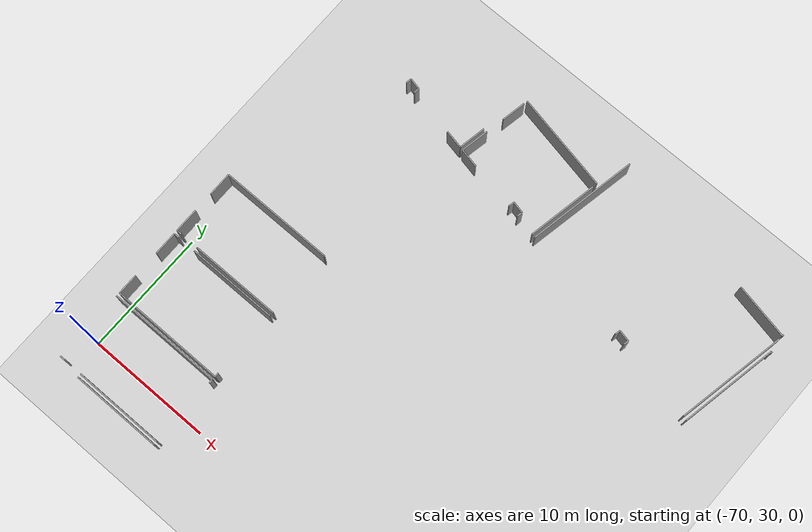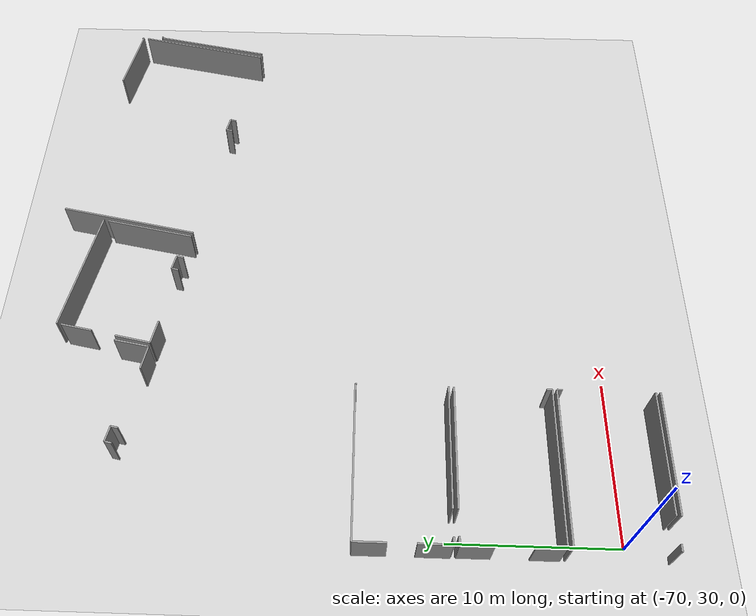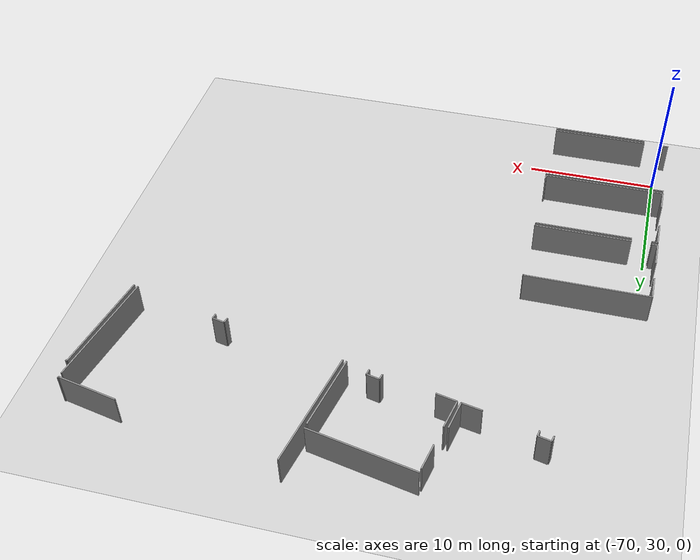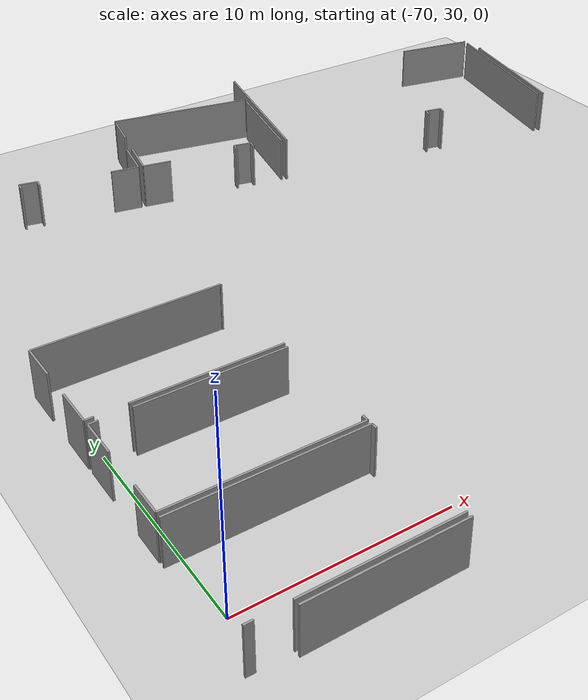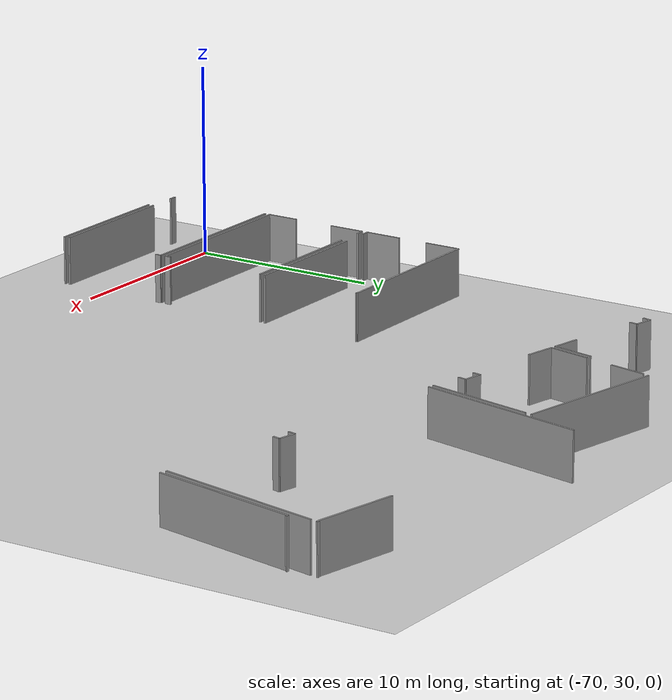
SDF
<sdf version="1.6">
 <world name="default">
  <model name="ground_plane">
   <static>1</static>
   <link name="link">
    <collision name="collision">
     <geometry><plane><normal>0 0 1</normal><size>100 100</size></plane></geometry>
     <surface><friction><ode><mu>100</mu><mu2>50</mu2></ode></friction></surface>
    </collision>
    <visual name="visual">
     <cast_shadows>0</cast_shadows>
     <geometry><plane><normal>0 0 1</normal><size>100 100</size></plane></geometry>
     <material>
      <script><uri>file://media/materials/scripts/gazebo.material</uri><name>Gazebo/Grey</name></script>
     </material>
    </visual>
   </link>
  </model>
  <model name="0510045926_A-40">
   <static>1</static>
   <link name="Wall_555">
    <collision name="Wall_555_Collision">
     <geometry><box><size>8.03696960588 0.1 2.5</size></box></geometry>
     <pose>4.01848480294 0 1.25 0 0 0</pose>
    </collision>
    <visual name="Wall_555_Visual">
     <pose>4.01848480294 0 1.25 0 0 0</pose>
     <geometry><box><size>8.03696960588 0.1 2.5</size></box></geometry>
     <material>
      <script><uri>file://media/materials/scripts/gazebo.material</uri><name>Gazebo/Grey</name></script>
      <ambient>1 1 1 1</ambient>
     </material>
    </visual>
    <pose>83.8994307762 -39.0161882944 0 0 0 2.9483656719</pose>
   </link>
   <link name="Wall_556">
    <collision name="Wall_556_Collision">
     <geometry><box><size>2.25757881405 0.1 2.5</size></box></geometry>
     <pose>1.12878940702 0 1.25 0 0 0</pose>
    </collision>
    <visual name="Wall_556_Visual">
     <pose>1.12878940702 0 1.25 0 0 0</pose>
     <geometry><box><size>2.25757881405 0.1 2.5</size></box></geometry>
     <material>
      <script><uri>file://media/materials/scripts/gazebo.material</uri><name>Gazebo/Grey</name></script>
      <ambient>1 1 1 1</ambient>
     </material>
    </visual>
    <pose>74.8507389757 -43.4075249234 0 0 0 1.37617915009</pose>
   </link>
   <link name="Wall_557">
    <collision name="Wall_557_Collision">
     <geometry><box><size>1.97564684365 0.1 2.5</size></box></geometry>
     <pose>0.987823421824 0 1.25 0 0 0</pose>
    </collision>
    <visual name="Wall_557_Visual">
     <pose>0.987823421824 0 1.25 0 0 0</pose>
     <geometry><box><size>1.97564684365 0.1 2.5</size></box></geometry>
     <material>
      <script><uri>file://media/materials/scripts/gazebo.material</uri><name>Gazebo/Grey</name></script>
      <ambient>1 1 1 1</ambient>
     </material>
    </visual>
    <pose>75.5929510163 -39.7083949411 0 0 0 1.382749115</pose>
   </link>
   <link name="Wall_559">
    <collision name="Wall_559_Collision">
     <geometry><box><size>5.72278259614 0.1 2.5</size></box></geometry>
     <pose>2.86139129807 0 1.25 0 0 0</pose>
    </collision>
    <visual name="Wall_559_Visual">
     <pose>2.86139129807 0 1.25 0 0 0</pose>
     <geometry><box><size>5.72278259614 0.1 2.5</size></box></geometry>
     <material>
      <script><uri>file://media/materials/scripts/gazebo.material</uri><name>Gazebo/Grey</name></script>
      <ambient>1 1 1 1</ambient>
     </material>
    </visual>
    <pose>83.8306416301 -39.3464269623 0 0 0 -1.75976270087</pose>
   </link>
   <link name="Wall_560">
    <collision name="Wall_560_Collision">
     <geometry><box><size>0.446629047565 0.1 2.5</size></box></geometry>
     <pose>0.223314523782 0 1.25 0 0 0</pose>
    </collision>
    <visual name="Wall_560_Visual">
     <pose>0.223314523782 0 1.25 0 0 0</pose>
     <geometry><box><size>0.446629047565 0.1 2.5</size></box></geometry>
     <material>
      <script><uri>file://media/materials/scripts/gazebo.material</uri><name>Gazebo/Grey</name></script>
      <ambient>1 1 1 1</ambient>
     </material>
    </visual>
    <pose>81.0948135268 -44.6442065451 0 0 0 1.38733365195</pose>
   </link>
   <link name="Wall_561">
    <collision name="Wall_561_Collision">
     <geometry><box><size>0.963739719244 0.1 2.5</size></box></geometry>
     <pose>0.481869859622 0 1.25 0 0 0</pose>
    </collision>
    <visual name="Wall_561_Visual">
     <pose>0.481869859622 0 1.25 0 0 0</pose>
     <geometry><box><size>0.963739719244 0.1 2.5</size></box></geometry>
     <material>
      <script><uri>file://media/materials/scripts/gazebo.material</uri><name>Gazebo/Grey</name></script>
      <ambient>1 1 1 1</ambient>
     </material>
    </visual>
    <pose>81.1762943972 -44.2050728822 0 0 0 2.9249806126</pose>
   </link>
   <link name="Wall_562">
    <collision name="Wall_562_Collision">
     <geometry><box><size>0.456623479223 0.1 2.5</size></box></geometry>
     <pose>0.228311739611 0 1.25 0 0 0</pose>
    </collision>
    <visual name="Wall_562_Visual">
     <pose>0.228311739611 0 1.25 0 0 0</pose>
     <geometry><box><size>0.456623479223 0.1 2.5</size></box></geometry>
     <material>
      <script><uri>file://media/materials/scripts/gazebo.material</uri><name>Gazebo/Grey</name></script>
      <ambient>1 1 1 1</ambient>
     </material>
    </visual>
    <pose>80.2350761186 -43.9979439407 0 0 0 -1.79217856116</pose>
   </link>
   <link name="Wall_563">
    <collision name="Wall_563_Collision">
     <geometry><box><size>1.5363773057 0.1 2.5</size></box></geometry>
     <pose>0.768188652851 0 1.25 0 0 0</pose>
    </collision>
    <visual name="Wall_563_Visual">
     <pose>0.768188652851 0 1.25 0 0 0</pose>
     <geometry><box><size>1.5363773057 0.1 2.5</size></box></geometry>
     <material>
      <script><uri>file://media/materials/scripts/gazebo.material</uri><name>Gazebo/Grey</name></script>
      <ambient>1 1 1 1</ambient>
     </material>
    </visual>
    <pose>76.3552159814 -43.7189798392 0 0 0 2.93745751592</pose>
   </link>
   <link name="Wall_570">
    <collision name="Wall_570_Collision">
     <geometry><box><size>2.20354784162 0.1 2.5</size></box></geometry>
     <pose>1.10177392081 0 1.25 0 0 0</pose>
    </collision>
    <visual name="Wall_570_Visual">
     <pose>1.10177392081 0 1.25 0 0 0</pose>
     <geometry><box><size>2.20354784162 0.1 2.5</size></box></geometry>
     <material>
      <script><uri>file://media/materials/scripts/gazebo.material</uri><name>Gazebo/Grey</name></script>
      <ambient>1 1 1 1</ambient>
     </material>
    </visual>
    <pose>74.9824790745 -41.190026843 0 0 0 -1.75066012981</pose>
   </link>
   <link name="Wall_571">
    <collision name="Wall_571_Collision">
     <geometry><box><size>1.50250398723 0.1 2.5</size></box></geometry>
     <pose>0.751251993616 0 1.25 0 0 0</pose>
    </collision>
    <visual name="Wall_571_Visual">
     <pose>0.751251993616 0 1.25 0 0 0</pose>
     <geometry><box><size>1.50250398723 0.1 2.5</size></box></geometry>
     <material>
      <script><uri>file://media/materials/scripts/gazebo.material</uri><name>Gazebo/Grey</name></script>
      <ambient>1 1 1 1</ambient>
     </material>
    </visual>
    <pose>74.5882741159 -43.3580271984 0 0 0 2.94830547961</pose>
   </link>
   <link name="Wall_572">
    <collision name="Wall_572_Collision">
     <geometry><box><size>0.440391204145 0.1 2.5</size></box></geometry>
     <pose>0.220195602072 0 1.25 0 0 0</pose>
    </collision>
    <visual name="Wall_572_Visual">
     <pose>0.220195602072 0 1.25 0 0 0</pose>
     <geometry><box><size>0.440391204145 0.1 2.5</size></box></geometry>
     <material>
      <script><uri>file://media/materials/scripts/gazebo.material</uri><name>Gazebo/Grey</name></script>
      <ambient>1 1 1 1</ambient>
     </material>
    </visual>
    <pose>69.2988710711 -42.3665496913 0 0 0 1.38470482986</pose>
   </link>
   <link name="Wall_573">
    <collision name="Wall_573_Collision">
     <geometry><box><size>0.957543123551 0.1 2.5</size></box></geometry>
     <pose>0.478771561775 0 1.25 0 0 0</pose>
    </collision>
    <visual name="Wall_573_Visual">
     <pose>0.478771561775 0 1.25 0 0 0</pose>
     <geometry><box><size>0.957543123551 0.1 2.5</size></box></geometry>
     <material>
      <script><uri>file://media/materials/scripts/gazebo.material</uri><name>Gazebo/Grey</name></script>
      <ambient>1 1 1 1</ambient>
     </material>
    </visual>
    <pose>69.3803519415 -41.9337618906 0 0 0 2.92355627326</pose>
   </link>
   <link name="Wall_574">
    <collision name="Wall_574_Collision">
     <geometry><box><size>0.447830223236 0.1 2.5</size></box></geometry>
     <pose>0.223915111618 0 1.25 0 0 0</pose>
    </collision>
    <visual name="Wall_574_Visual">
     <pose>0.223915111618 0 1.25 0 0 0</pose>
     <geometry><box><size>0.447830223236 0.1 2.5</size></box></geometry>
     <material>
      <script><uri>file://media/materials/scripts/gazebo.material</uri><name>Gazebo/Grey</name></script>
      <ambient>1 1 1 1</ambient>
     </material>
    </visual>
    <pose>68.4454795251 -41.726632949 0 0 0 -1.76819188664</pose>
   </link>
   <link name="Wall_889">
    <collision name="Wall_889_Collision">
     <geometry><box><size>7.33124765996 0.1 2.5</size></box></geometry>
     <pose>3.66562382998 0 1.25 0 0 0</pose>
    </collision>
    <visual name="Wall_889_Visual">
     <pose>3.66562382998 0 1.25 0 0 0</pose>
     <geometry><box><size>7.33124765996 0.1 2.5</size></box></geometry>
     <material>
      <script><uri>file://media/materials/scripts/gazebo.material</uri><name>Gazebo/Grey</name></script>
      <ambient>1 1 1 1</ambient>
     </material>
    </visual>
    <pose>65.13877766 -73.8366955826 0 0 0 0.0</pose>
   </link>
   <link name="Wall_891">
    <collision name="Wall_891_Collision">
     <geometry><box><size>9.2654664526 0.1 2.5</size></box></geometry>
     <pose>4.6327332263 0 1.25 0 0 0</pose>
    </collision>
    <visual name="Wall_891_Visual">
     <pose>4.6327332263 0 1.25 0 0 0</pose>
     <geometry><box><size>9.2654664526 0.1 2.5</size></box></geometry>
     <material>
      <script><uri>file://media/materials/scripts/gazebo.material</uri><name>Gazebo/Grey</name></script>
      <ambient>1 1 1 1</ambient>
     </material>
    </visual>
    <pose>63.1997360121 -67.7796970485 0 0 0 0.0</pose>
   </link>
   <link name="Wall_892">
    <collision name="Wall_892_Collision">
     <geometry><box><size>0.316277771079 0.1 2.5</size></box></geometry>
     <pose>0.15813888554 0 1.25 0 0 0</pose>
    </collision>
    <visual name="Wall_892_Visual">
     <pose>0.15813888554 0 1.25 0 0 0</pose>
     <geometry><box><size>0.316277771079 0.1 2.5</size></box></geometry>
     <material>
      <script><uri>file://media/materials/scripts/gazebo.material</uri><name>Gazebo/Grey</name></script>
      <ambient>1 1 1 1</ambient>
     </material>
    </visual>
    <pose>72.4652024647 -67.7796970485 0 0 0 -1.57079632679</pose>
   </link>
   <link name="Wall_893">
    <collision name="Wall_893_Collision">
     <geometry><box><size>7.34292404638 0.1 2.5</size></box></geometry>
     <pose>3.67146202319 0 1.25 0 0 0</pose>
    </collision>
    <visual name="Wall_893_Visual">
     <pose>3.67146202319 0 1.25 0 0 0</pose>
     <geometry><box><size>7.34292404638 0.1 2.5</size></box></geometry>
     <material>
      <script><uri>file://media/materials/scripts/gazebo.material</uri><name>Gazebo/Grey</name></script>
      <ambient>1 1 1 1</ambient>
     </material>
    </visual>
    <pose>72.4652024647 -73.5521471225 0 0 0 3.14159265359</pose>
   </link>
   <link name="Wall_894">
    <collision name="Wall_894_Collision">
     <geometry><box><size>0.414511717635 0.1 2.5</size></box></geometry>
     <pose>0.207255858817 0 1.25 0 0 0</pose>
    </collision>
    <visual name="Wall_894_Visual">
     <pose>0.207255858817 0 1.25 0 0 0</pose>
     <geometry><box><size>0.414511717635 0.1 2.5</size></box></geometry>
     <material>
      <script><uri>file://media/materials/scripts/gazebo.material</uri><name>Gazebo/Grey</name></script>
      <ambient>1 1 1 1</ambient>
     </material>
    </visual>
    <pose>63.6005406675 -73.5521471225 0 0 0 3.14159265359</pose>
   </link>
   <link name="Wall_897">
    <collision name="Wall_897_Collision">
     <geometry><box><size>1.68114580888 0.1 2.5</size></box></geometry>
     <pose>0.840572904438 0 1.25 0 0 0</pose>
    </collision>
    <visual name="Wall_897_Visual">
     <pose>0.840572904438 0 1.25 0 0 0</pose>
     <geometry><box><size>1.68114580888 0.1 2.5</size></box></geometry>
     <material>
      <script><uri>file://media/materials/scripts/gazebo.material</uri><name>Gazebo/Grey</name></script>
      <ambient>1 1 1 1</ambient>
     </material>
    </visual>
    <pose>63.223088785 -67.4870258848 0 0 0 1.57079632679</pose>
   </link>
   <link name="Wall_898">
    <collision name="Wall_898_Collision">
     <geometry><box><size>1.91848105443 0.1 2.5</size></box></geometry>
     <pose>0.959240527214 0 1.25 0 0 0</pose>
    </collision>
    <visual name="Wall_898_Visual">
     <pose>0.959240527214 0 1.25 0 0 0</pose>
     <geometry><box><size>1.91848105443 0.1 2.5</size></box></geometry>
     <material>
      <script><uri>file://media/materials/scripts/gazebo.material</uri><name>Gazebo/Grey</name></script>
      <ambient>1 1 1 1</ambient>
     </material>
    </visual>
    <pose>63.223088785 -63.6416872378 0 0 0 1.57079632679</pose>
   </link>
   <link name="Wall_899">
    <collision name="Wall_899_Collision">
     <geometry><box><size>0.453856063154 0.1 2.5</size></box></geometry>
     <pose>0.226928031577 0 1.25 0 0 0</pose>
    </collision>
    <visual name="Wall_899_Visual">
     <pose>0.226928031577 0 1.25 0 0 0</pose>
     <geometry><box><size>0.453856063154 0.1 2.5</size></box></geometry>
     <material>
      <script><uri>file://media/materials/scripts/gazebo.material</uri><name>Gazebo/Grey</name></script>
      <ambient>1 1 1 1</ambient>
     </material>
    </visual>
    <pose>63.223088785 -61.7232061834 0 0 0 0.0</pose>
   </link>
   <link name="Wall_900">
    <collision name="Wall_900_Collision">
     <geometry><box><size>7.30764105265 0.1 2.5</size></box></geometry>
     <pose>3.65382052633 0 1.25 0 0 0</pose>
    </collision>
    <visual name="Wall_900_Visual">
     <pose>3.65382052633 0 1.25 0 0 0</pose>
     <geometry><box><size>7.30764105265 0.1 2.5</size></box></geometry>
     <material>
      <script><uri>file://media/materials/scripts/gazebo.material</uri><name>Gazebo/Grey</name></script>
      <ambient>1 1 1 1</ambient>
     </material>
    </visual>
    <pose>65.1529923913 -61.7232061834 0 0 0 0.0</pose>
   </link>
   <link name="Wall_901">
    <collision name="Wall_901_Collision">
     <geometry><box><size>0.332015509287 0.1 2.5</size></box></geometry>
     <pose>0.166007754644 0 1.25 0 0 0</pose>
    </collision>
    <visual name="Wall_901_Visual">
     <pose>0.166007754644 0 1.25 0 0 0</pose>
     <geometry><box><size>0.332015509287 0.1 2.5</size></box></geometry>
     <material>
      <script><uri>file://media/materials/scripts/gazebo.material</uri><name>Gazebo/Grey</name></script>
      <ambient>1 1 1 1</ambient>
     </material>
    </visual>
    <pose>72.460633444 -67.1768401414 0 0 0 -1.57079632679</pose>
   </link>
   <link name="Wall_902">
    <collision name="Wall_902_Collision">
     <geometry><box><size>9.23757045255 0.1 2.5</size></box></geometry>
     <pose>4.61878522627 0 1.25 0 0 0</pose>
    </collision>
    <visual name="Wall_902_Visual">
     <pose>4.61878522627 0 1.25 0 0 0</pose>
     <geometry><box><size>9.23757045255 0.1 2.5</size></box></geometry>
     <material>
      <script><uri>file://media/materials/scripts/gazebo.material</uri><name>Gazebo/Grey</name></script>
      <ambient>1 1 1 1</ambient>
     </material>
    </visual>
    <pose>72.460633444 -67.5088556507 0 0 0 3.13922950125</pose>
   </link>
   <link name="Wall_903">
    <collision name="Wall_903_Collision">
     <geometry><box><size>9.29440358414 0.1 2.5</size></box></geometry>
     <pose>4.64720179207 0 1.25 0 0 0</pose>
    </collision>
    <visual name="Wall_903_Visual">
     <pose>4.64720179207 0 1.25 0 0 0</pose>
     <geometry><box><size>9.29440358414 0.1 2.5</size></box></geometry>
     <material>
      <script><uri>file://media/materials/scripts/gazebo.material</uri><name>Gazebo/Grey</name></script>
      <ambient>1 1 1 1</ambient>
     </material>
    </visual>
    <pose>63.2020205225 -55.9154731158 0 0 0 0.0</pose>
   </link>
   <link name="Wall_904">
    <collision name="Wall_904_Collision">
     <geometry><box><size>0.076404180654 0.1 2.5</size></box></geometry>
     <pose>0.038202090327 0 1.25 0 0 0</pose>
    </collision>
    <visual name="Wall_904_Visual">
     <pose>0.038202090327 0 1.25 0 0 0</pose>
     <geometry><box><size>0.076404180654 0.1 2.5</size></box></geometry>
     <material>
      <script><uri>file://media/materials/scripts/gazebo.material</uri><name>Gazebo/Grey</name></script>
      <ambient>1 1 1 1</ambient>
     </material>
    </visual>
    <pose>72.4964241067 -55.9154731158 0 0 0 -1.57079632679</pose>
   </link>
   <link name="Wall_905">
    <collision name="Wall_905_Collision">
     <geometry><box><size>7.35713877766 0.1 2.5</size></box></geometry>
     <pose>3.67856938883 0 1.25 0 0 0</pose>
    </collision>
    <visual name="Wall_905_Visual">
     <pose>3.67856938883 0 1.25 0 0 0</pose>
     <geometry><box><size>7.35713877766 0.1 2.5</size></box></geometry>
     <material>
      <script><uri>file://media/materials/scripts/gazebo.material</uri><name>Gazebo/Grey</name></script>
      <ambient>1 1 1 1</ambient>
     </material>
    </visual>
    <pose>72.4964241067 -61.4219046471 0 0 0 3.14159265359</pose>
   </link>
   <link name="Wall_906">
    <collision name="Wall_906_Collision">
     <geometry><box><size>0.422126752251 0.1 2.5</size></box></geometry>
     <pose>0.211063376126 0 1.25 0 0 0</pose>
    </collision>
    <visual name="Wall_906_Visual">
     <pose>0.211063376126 0 1.25 0 0 0</pose>
     <geometry><box><size>0.422126752251 0.1 2.5</size></box></geometry>
     <material>
      <script><uri>file://media/materials/scripts/gazebo.material</uri><name>Gazebo/Grey</name></script>
      <ambient>1 1 1 1</ambient>
     </material>
    </visual>
    <pose>63.6264317852 -61.4219046471 0 0 0 3.14159265359</pose>
   </link>
   <link name="Wall_907">
    <collision name="Wall_907_Collision">
     <geometry><box><size>1.96569426905 0.1 2.5</size></box></geometry>
     <pose>0.982847134526 0 1.25 0 0 0</pose>
    </collision>
    <visual name="Wall_907_Visual">
     <pose>0.982847134526 0 1.25 0 0 0</pose>
     <geometry><box><size>1.96569426905 0.1 2.5</size></box></geometry>
     <material>
      <script><uri>file://media/materials/scripts/gazebo.material</uri><name>Gazebo/Grey</name></script>
      <ambient>1 1 1 1</ambient>
     </material>
    </visual>
    <pose>63.2043050329 -61.4219046471 0 0 0 1.57079632679</pose>
   </link>
   <link name="Wall_908">
    <collision name="Wall_908_Collision">
     <geometry><box><size>1.93168179866 0.1 2.5</size></box></geometry>
     <pose>0.965840899328 0 1.25 0 0 0</pose>
    </collision>
    <visual name="Wall_908_Visual">
     <pose>0.965840899328 0 1.25 0 0 0</pose>
     <geometry><box><size>1.93168179866 0.1 2.5</size></box></geometry>
     <material>
      <script><uri>file://media/materials/scripts/gazebo.material</uri><name>Gazebo/Grey</name></script>
      <ambient>1 1 1 1</ambient>
     </material>
    </visual>
    <pose>63.2043050329 -57.8471535635 0 0 0 1.57197898065</pose>
   </link>
   <link name="Wall_944">
    <collision name="Wall_944_Collision">
     <geometry><box><size>8.91817527132 0.1 2.5</size></box></geometry>
     <pose>4.45908763566 0 1.25 0 0 0</pose>
    </collision>
    <visual name="Wall_944_Visual">
     <pose>4.45908763566 0 1.25 0 0 0</pose>
     <geometry><box><size>8.91817527132 0.1 2.5</size></box></geometry>
     <material>
      <script><uri>file://media/materials/scripts/gazebo.material</uri><name>Gazebo/Grey</name></script>
      <ambient>1 1 1 1</ambient>
     </material>
    </visual>
    <pose>83.0457853956 -45.0335886485 0 0 0 1.37816779234</pose>
   </link>
   <link name="Wall_947">
    <collision name="Wall_947_Collision">
     <geometry><box><size>8.88273203956 0.1 2.5</size></box></geometry>
     <pose>4.44136601978 0 1.25 0 0 0</pose>
    </collision>
    <visual name="Wall_947_Visual">
     <pose>4.44136601978 0 1.25 0 0 0</pose>
     <geometry><box><size>8.88273203956 0.1 2.5</size></box></geometry>
     <material>
      <script><uri>file://media/materials/scripts/gazebo.material</uri><name>Gazebo/Grey</name></script>
      <ambient>1 1 1 1</ambient>
     </material>
    </visual>
    <pose>100.946954938 -39.441107226 0 0 0 -1.7647564755</pose>
   </link>
   <link name="Wall_948">
    <collision name="Wall_948_Collision">
     <geometry><box><size>0.40079533134 0.1 2.5</size></box></geometry>
     <pose>0.20039766567 0 1.25 0 0 0</pose>
    </collision>
    <visual name="Wall_948_Visual">
     <pose>0.20039766567 0 1.25 0 0 0</pose>
     <geometry><box><size>0.40079533134 0.1 2.5</size></box></geometry>
     <material>
      <script><uri>file://media/materials/scripts/gazebo.material</uri><name>Gazebo/Grey</name></script>
      <ambient>1 1 1 1</ambient>
     </material>
    </visual>
    <pose>92.8427812645 -46.9228787369 0 0 0 1.33426600337</pose>
   </link>
   <link name="Wall_949">
    <collision name="Wall_949_Collision">
     <geometry><box><size>0.951006175961 0.1 2.5</size></box></geometry>
     <pose>0.475503087981 0 1.25 0 0 0</pose>
    </collision>
    <visual name="Wall_949_Visual">
     <pose>0.475503087981 0 1.25 0 0 0</pose>
     <geometry><box><size>0.951006175961 0.1 2.5</size></box></geometry>
     <material>
      <script><uri>file://media/materials/scripts/gazebo.material</uri><name>Gazebo/Grey</name></script>
      <ambient>1 1 1 1</ambient>
     </material>
    </visual>
    <pose>92.9367000247 -46.533242799 0 0 0 2.93514117212</pose>
   </link>
   <link name="Wall_950">
    <collision name="Wall_950_Collision">
     <geometry><box><size>0.423440054283 0.1 2.5</size></box></geometry>
     <pose>0.211720027141 0 1.25 0 0 0</pose>
    </collision>
    <visual name="Wall_950_Visual">
     <pose>0.211720027141 0 1.25 0 0 0</pose>
     <geometry><box><size>0.423440054283 0.1 2.5</size></box></geometry>
     <material>
      <script><uri>file://media/materials/scripts/gazebo.material</uri><name>Gazebo/Grey</name></script>
      <ambient>1 1 1 1</ambient>
     </material>
    </visual>
    <pose>92.0058889601 -46.3382979128 0 0 0 -1.81170406155</pose>
   </link>
   <link name="Wall_954">
    <collision name="Wall_954_Collision">
     <geometry><box><size>0.107312263372 0.1 2.5</size></box></geometry>
     <pose>0.0536561316861 0 1.25 0 0 0</pose>
    </collision>
    <visual name="Wall_954_Visual">
     <pose>0.0536561316861 0 1.25 0 0 0</pose>
     <geometry><box><size>0.107312263372 0.1 2.5</size></box></geometry>
     <material>
      <script><uri>file://media/materials/scripts/gazebo.material</uri><name>Gazebo/Grey</name></script>
      <ambient>1 1 1 1</ambient>
     </material>
    </visual>
    <pose>101.006859877 -39.015426791 0 0 0 -1.82667530403</pose>
   </link>
   <link name="Wall_955">
    <collision name="Wall_955_Collision">
     <geometry><box><size>4.52667729711 0.1 2.5</size></box></geometry>
     <pose>2.26333864856 0 1.25 0 0 0</pose>
    </collision>
    <visual name="Wall_955_Visual">
     <pose>2.26333864856 0 1.25 0 0 0</pose>
     <geometry><box><size>4.52667729711 0.1 2.5</size></box></geometry>
     <material>
      <script><uri>file://media/materials/scripts/gazebo.material</uri><name>Gazebo/Grey</name></script>
      <ambient>1 1 1 1</ambient>
     </material>
    </visual>
    <pose>100.979699587 -39.1192450962 0 0 0 2.94827708782</pose>
   </link>
   <link name="Wall_967">
    <collision name="Wall_967_Collision">
     <geometry><box><size>7.871485772 0.1 2.5</size></box></geometry>
     <pose>3.935742886 0 1.25 0 0 0</pose>
    </collision>
    <visual name="Wall_967_Visual">
     <pose>3.935742886 0 1.25 0 0 0</pose>
     <geometry><box><size>7.871485772 0.1 2.5</size></box></geometry>
     <material>
      <script><uri>file://media/materials/scripts/gazebo.material</uri><name>Gazebo/Grey</name></script>
      <ambient>1 1 1 1</ambient>
     </material>
    </visual>
    <pose>99.5666029965 -48.2580481397 0 0 0 1.37973135737</pose>
   </link>
   <link name="Wall_968">
    <collision name="Wall_968_Collision">
     <geometry><box><size>0.125970718991 0.1 2.5</size></box></geometry>
     <pose>0.0629853594956 0 1.25 0 0 0</pose>
    </collision>
    <visual name="Wall_968_Visual">
     <pose>0.0629853594956 0 1.25 0 0 0</pose>
     <geometry><box><size>0.125970718991 0.1 2.5</size></box></geometry>
     <material>
      <script><uri>file://media/materials/scripts/gazebo.material</uri><name>Gazebo/Grey</name></script>
      <ambient>1 1 1 1</ambient>
     </material>
    </visual>
    <pose>101.061434292 -40.5298033417 0 0 0 -0.231782948151</pose>
   </link>
   <pose>-133.95 101.113233661 0 0 0 0</pose>
  </model>
 </world>
</sdf>
